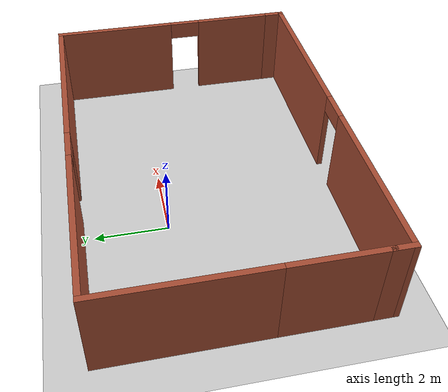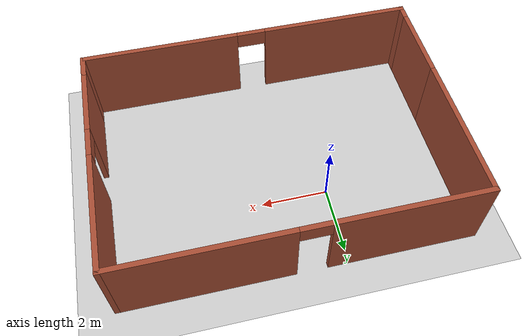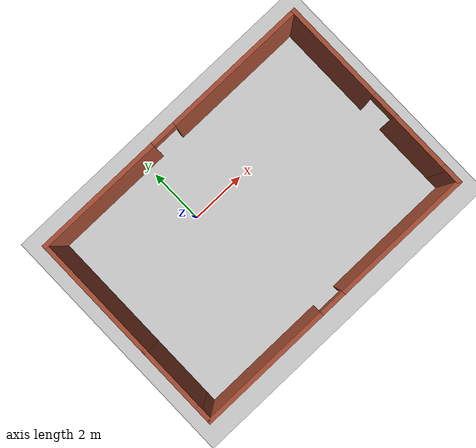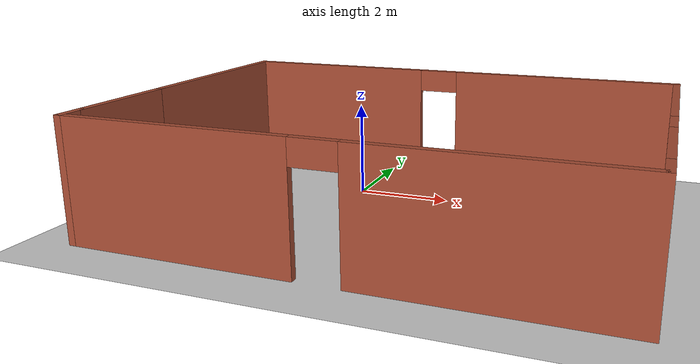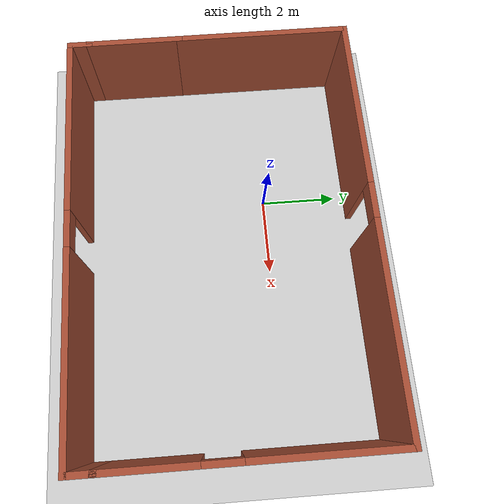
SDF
<sdf version="1.7">
 <world name="default">
  <light name="sun" type="directional">
   <pose>0 0 10 0 -0 0</pose>
   <diffuse>0.8 0.8 0.8 1</diffuse>
   <specular>0.2 0.2 0.2 1</specular>
   <attenuation>
    <range>1000</range>
    <constant>0.9</constant>
    <linear>0.01</linear>
    <quadratic>0.001</quadratic>
   </attenuation>
   <direction>-0.5 0.1 -0.9</direction>
   <spot><inner_angle>0</inner_angle><outer_angle>0</outer_angle><falloff>0</falloff></spot>
  </light>
  <model name="ground_plane">
   <static>1</static>
   <link name="link">
    <collision name="collision">
     <geometry><plane><normal>0 0 1</normal><size>100 100</size></plane></geometry>
     <surface>
      <contact><collide_bitmask>65535</collide_bitmask></contact>
      <friction><ode><mu>100</mu><mu2>50</mu2></ode></friction>
     </surface>
    </collision>
    <visual name="visual">
     <cast_shadows>0</cast_shadows>
     <geometry><plane><normal>0 0 1</normal><size>100 100</size></plane></geometry>
     <material>
      <script><uri>file://media/materials/scripts/gazebo.material</uri><name>Gazebo/Grey</name></script>
     </material>
    </visual>
   </link>
  </model>
  <gravity>0 0 -9.8</gravity>
  <magnetic_field>6e-06 2.3e-05 -4.2e-05</magnetic_field>
  <atmosphere type="adiabatic"/>
  <physics type="ode">
   <max_step_size>0.001</max_step_size>
   <real_time_factor>1</real_time_factor>
   <real_time_update_rate>1000</real_time_update_rate>
  </physics>
  <scene><ambient>0.4 0.4 0.4 1</ambient><background>0.7 0.7 0.7 1</background><shadows>1</shadows></scene>
  <audio><device>default</device></audio>
  <spherical_coordinates>
   <surface_model>EARTH_WGS84</surface_model>
   <latitude_deg>0</latitude_deg>
   <longitude_deg>0</longitude_deg>
   <elevation>0</elevation>
   <heading_deg>0</heading_deg>
  </spherical_coordinates>
  <model name="fourdiwari">
   <pose>1.375 -1.26 0 0 -0 0</pose>
   <link name="Wall_0">
    <collision name="Wall_0_Collision">
     <geometry><box><size>2.5 0.15 2.5</size></box></geometry>
     <pose>0 0 1.25 0 -0 0</pose>
    </collision>
    <visual name="Wall_0_Visual">
     <pose>0 0 1.25 0 -0 0</pose>
     <geometry><box><size>2.5 0.15 2.5</size></box></geometry>
     <material>
      <script><uri>file://media/materials/scripts/gazebo.material</uri><name>Gazebo/Bricks</name></script>
      <ambient>1 1 1 1</ambient>
     </material>
     <meta><layer>0</layer></meta>
    </visual>
    <pose>-5.175 -1.925 0 0 -0 1.5708</pose>
   </link>
   <link name="Wall_1">
    <collision name="Wall_1_Collision">
     <geometry><box><size>4.5 0.15 2.5</size></box></geometry>
     <pose>0 0 1.25 0 -0 0</pose>
    </collision>
    <visual name="Wall_1_Visual">
     <pose>0 0 1.25 0 -0 0</pose>
     <geometry><box><size>4.5 0.15 2.5</size></box></geometry>
     <material>
      <script><uri>file://media/materials/scripts/gazebo.material</uri><name>Gazebo/Bricks</name></script>
      <ambient>1 1 1 1</ambient>
     </material>
     <meta><layer>0</layer></meta>
    </visual>
    <pose>-5.175 1.425 0 0 -0 1.5708</pose>
   </link>
   <link name="Wall_2">
    <pose>-0 3.6 0 0 -0 0</pose>
    <visual name="Wall_2_Visual_0">
     <pose>-2.99721 0 1.25 0 -0 0</pose>
     <geometry><box><size>4.50558 0.15 2.5</size></box></geometry>
     <material>
      <script><uri>file://media/materials/scripts/gazebo.material</uri><name>Gazebo/Bricks</name></script>
      <ambient>1 1 1 1</ambient>
     </material>
     <meta><layer>0</layer></meta>
    </visual>
    <collision name="Wall_2_Collision_0">
     <geometry><box><size>4.50558 0.15 2.5</size></box></geometry>
     <pose>-2.99721 0 1.25 0 -0 0</pose>
    </collision>
    <visual name="Wall_2_Visual_1">
     <pose>2.70279 0 1.25 0 -0 0</pose>
     <geometry><box><size>5.09442 0.15 2.5</size></box></geometry>
     <material>
      <script><uri>file://media/materials/scripts/gazebo.material</uri><name>Gazebo/Bricks</name></script>
      <ambient>1 1 1 1</ambient>
     </material>
     <meta><layer>0</layer></meta>
    </visual>
    <collision name="Wall_2_Collision_1">
     <geometry><box><size>5.09442 0.15 2.5</size></box></geometry>
     <pose>2.70279 0 1.25 0 -0 0</pose>
    </collision>
    <visual name="Wall_2_Visual_2">
     <pose>-0.294422 0 2.25 0 -0 0</pose>
     <geometry><box><size>0.9 0.15 0.5</size></box></geometry>
     <material>
      <script><uri>file://media/materials/scripts/gazebo.material</uri><name>Gazebo/Bricks</name></script>
      <ambient>1 1 1 1</ambient>
     </material>
     <meta><layer>0</layer></meta>
    </visual>
    <collision name="Wall_2_Collision_2">
     <geometry><box><size>0.9 0.15 0.5</size></box></geometry>
     <pose>-0.294422 0 2.25 0 -0 0</pose>
    </collision>
   </link>
   <link name="Wall_3">
    <pose>5.175 0.3 0 0 -0 -1.5708</pose>
    <visual name="Wall_3_Visual_0">
     <pose>-1.5784 0 1.25 0 -0 0</pose>
     <geometry><box><size>3.59321 0.15 2.5</size></box></geometry>
     <material>
      <script><uri>file://media/materials/scripts/gazebo.material</uri><name>Gazebo/Bricks</name></script>
      <ambient>1 1 1 1</ambient>
     </material>
     <meta><layer>0</layer></meta>
    </visual>
    <collision name="Wall_3_Collision_0">
     <geometry><box><size>3.59321 0.15 2.5</size></box></geometry>
     <pose>-1.5784 0 1.25 0 -0 0</pose>
    </collision>
    <visual name="Wall_3_Visual_1">
     <pose>2.2466 0 1.25 0 -0 0</pose>
     <geometry><box><size>2.25679 0.15 2.5</size></box></geometry>
     <material>
      <script><uri>file://media/materials/scripts/gazebo.material</uri><name>Gazebo/Bricks</name></script>
      <ambient>1 1 1 1</ambient>
     </material>
     <meta><layer>0</layer></meta>
    </visual>
    <collision name="Wall_3_Collision_1">
     <geometry><box><size>2.25679 0.15 2.5</size></box></geometry>
     <pose>2.2466 0 1.25 0 -0 0</pose>
    </collision>
    <visual name="Wall_3_Visual_2">
     <pose>0.668205 0 2.25 0 -0 0</pose>
     <geometry><box><size>0.9 0.15 0.5</size></box></geometry>
     <material>
      <script><uri>file://media/materials/scripts/gazebo.material</uri><name>Gazebo/Bricks</name></script>
      <ambient>1 1 1 1</ambient>
     </material>
     <meta><layer>0</layer></meta>
    </visual>
    <collision name="Wall_3_Collision_2">
     <geometry><box><size>0.9 0.15 0.5</size></box></geometry>
     <pose>0.668205 0 2.25 0 -0 0</pose>
    </collision>
   </link>
   <link name="Wall_4">
    <collision name="Wall_4_Collision">
     <geometry><box><size>0.75 0.15 2.5</size></box></geometry>
     <pose>0 0 1.25 0 -0 0</pose>
    </collision>
    <visual name="Wall_4_Visual">
     <pose>0 0 1.25 0 -0 0</pose>
     <geometry><box><size>0.75 0.15 2.5</size></box></geometry>
     <material>
      <script><uri>file://media/materials/scripts/gazebo.material</uri><name>Gazebo/Bricks</name></script>
      <ambient>1 1 1 1</ambient>
     </material>
     <meta><layer>0</layer></meta>
    </visual>
    <pose>5.175 -3.3 0 0 -0 -1.5708</pose>
   </link>
   <link name="Wall_5">
    <pose>-0 -3.6 0 0 -0 3.14159</pose>
    <visual name="Wall_5_Visual_0">
     <pose>-2.79589 0 1.25 0 -0 0</pose>
     <geometry><box><size>4.90822 0.15 2.5</size></box></geometry>
     <material>
      <script><uri>file://media/materials/scripts/gazebo.material</uri><name>Gazebo/Bricks</name></script>
      <ambient>1 1 1 1</ambient>
     </material>
     <meta><layer>0</layer></meta>
    </visual>
    <collision name="Wall_5_Collision_0">
     <geometry><box><size>4.90822 0.15 2.5</size></box></geometry>
     <pose>-2.79589 0 1.25 0 -0 0</pose>
    </collision>
    <visual name="Wall_5_Visual_1">
     <pose>2.90411 0 1.25 0 -0 0</pose>
     <geometry><box><size>4.69178 0.15 2.5</size></box></geometry>
     <material>
      <script><uri>file://media/materials/scripts/gazebo.material</uri><name>Gazebo/Bricks</name></script>
      <ambient>1 1 1 1</ambient>
     </material>
     <meta><layer>0</layer></meta>
    </visual>
    <collision name="Wall_5_Collision_1">
     <geometry><box><size>4.69178 0.15 2.5</size></box></geometry>
     <pose>2.90411 0 1.25 0 -0 0</pose>
    </collision>
    <visual name="Wall_5_Visual_2">
     <pose>0.10822 0 2.25 0 -0 0</pose>
     <geometry><box><size>0.9 0.15 0.5</size></box></geometry>
     <material>
      <script><uri>file://media/materials/scripts/gazebo.material</uri><name>Gazebo/Bricks</name></script>
      <ambient>1 1 1 1</ambient>
     </material>
     <meta><layer>0</layer></meta>
    </visual>
    <collision name="Wall_5_Collision_2">
     <geometry><box><size>0.9 0.15 0.5</size></box></geometry>
     <pose>0.10822 0 2.25 0 -0 0</pose>
    </collision>
   </link>
   <link name="Wall_6">
    <collision name="Wall_6_Collision">
     <geometry><box><size>0.65 0.15 2.5</size></box></geometry>
     <pose>0 0 1.25 0 -0 0</pose>
    </collision>
    <visual name="Wall_6_Visual">
     <pose>0 0 1.25 0 -0 0</pose>
     <geometry><box><size>0.65 0.15 2.5</size></box></geometry>
     <material>
      <script><uri>file://media/materials/scripts/gazebo.material</uri><name>Gazebo/Bricks</name></script>
      <ambient>1 1 1 1</ambient>
     </material>
     <meta><layer>0</layer></meta>
    </visual>
    <pose>-5.175 -3.35 0 0 -0 1.5708</pose>
   </link>
   <static>1</static>
  </model>
 </world>
</sdf>
